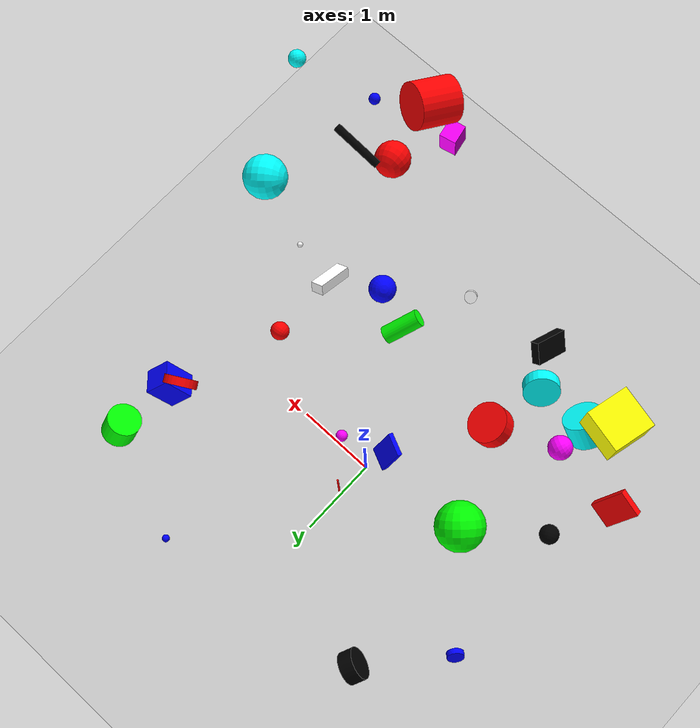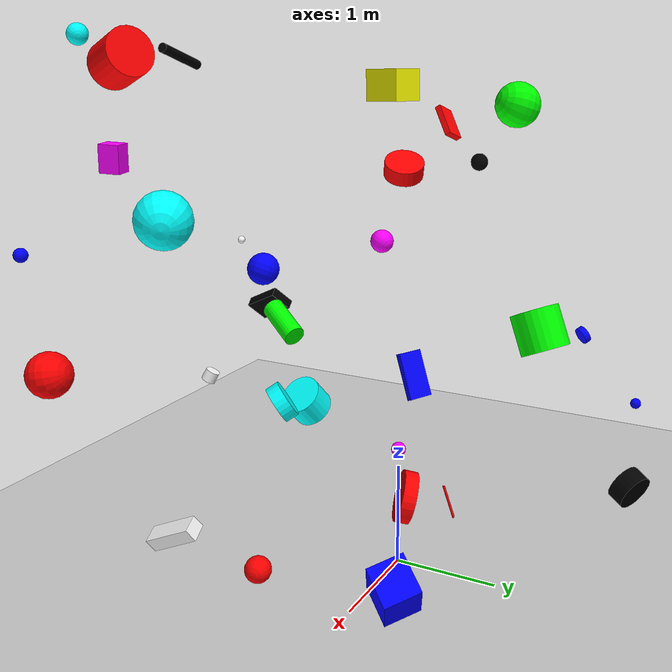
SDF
<sdf version="1.6">
 <world name="default">
  <include><uri>model://ground_plane</uri></include>
  <include><uri>model://sun</uri></include>
  <model name="model_0">
   <allow_auto_disable>false</allow_auto_disable>
   <pose>1.887654655655207
      0.9389138400704229
      1.7299534319423524
      0.7574217904752748
      1.913198525685011
      2.861334671547203</pose>
   <link name="link">
    <inertial>
     <mass>0.010189974300788652</mass>
     <inertia>
      <ixx>0.00010009734607922015</ixx>
      <iyy>0.00010009734607922015</iyy>
      <izz>0.00018338561655255602</izz>
      <ixy>0.0</ixy>
      <ixz>0.0</ixz>
      <iyz>0.0</iyz>
     </inertia>
    </inertial>
    <collision name="collision">
     <geometry>
      <cylinder><radius>0.18971911423663762</radius><length>0.09948577698591696</length></cylinder>
     </geometry>
     <surface>
      <bounce><restitution_coefficient>0</restitution_coefficient><threshold>5.0</threshold></bounce>
      <friction><ode><mu>3</mu></ode></friction>
     </surface>
    </collision>
    <visual name="visual">
     <geometry>
      <cylinder><radius>0.18971911423663762</radius><length>0.09948577698591696</length></cylinder>
     </geometry>
     <material>
      <diffuse>1
            0
            0
            1</diffuse>
      <specular>0
            1
            1
            1</specular>
      <ambient>1
            1
            1
            1</ambient>
     </material>
    </visual>
   </link>
  </model>
  <model name="model_1">
   <allow_auto_disable>false</allow_auto_disable>
   <pose>1.4790698495858656
      -0.6942271876196537
      3.395240197062054
      0.2310168436253863
      0.23559698313119173
      0.22196660758204428</pose>
   <link name="link">
    <inertial>
     <mass>0.0002930041019828856</mass>
     <inertia>
      <ixx>9.390275060571858e-08</ixx>
      <iyy>9.390275060571858e-08</iyy>
      <izz>9.390275060571858e-08</izz>
      <ixy>0.0</ixy>
      <ixz>0.0</ixz>
      <iyz>0.0</iyz>
     </inertia>
    </inertial>
    <collision name="collision">
     <geometry><sphere><radius>0.02830559647371755</radius></sphere></geometry>
     <surface>
      <bounce><restitution_coefficient>0</restitution_coefficient><threshold>5.0</threshold></bounce>
      <friction><ode><mu>9</mu></ode></friction>
     </surface>
    </collision>
    <visual name="visual">
     <geometry><sphere><radius>0.02830559647371755</radius></sphere></geometry>
     <material>
      <diffuse>1
            1
            1
            1</diffuse>
      <specular>0
            1
            0
            1</specular>
      <ambient>1
            0
            0
            1</ambient>
     </material>
    </visual>
   </link>
  </model>
  <model name="model_2">
   <allow_auto_disable>false</allow_auto_disable>
   <pose>1.7715244163271944
      -1.2914916048582858
      0.8220356710196223
      1.1288098892020566
      2.6994528550303336
      1.5635208453190168</pose>
   <link name="link">
    <inertial>
     <mass>0.05056256824862559</mass>
     <inertia>
      <ixx>0.0001938158617636058</ixx>
      <iyy>0.0011301221561560778</iyy>
      <izz>0.0010834192005103828</izz>
      <ixy>0.0</ixy>
      <ixz>0.0</ixz>
      <iyz>0.0</iyz>
     </inertia>
    </inertial>
    <collision name="collision">
     <geometry>
      <box><size>0.4895614770353805
           0.13212544103519724
           0.16894120694186135</size></box>
     </geometry>
     <surface>
      <bounce><restitution_coefficient>1</restitution_coefficient><threshold>5.0</threshold></bounce>
      <friction><ode><mu>3</mu></ode></friction>
     </surface>
    </collision>
    <visual name="visual">
     <geometry>
      <box><size>0.4895614770353805
           0.13212544103519724
           0.16894120694186135</size></box>
     </geometry>
     <material>
      <diffuse>1
            1
            1
            1</diffuse>
      <specular>0
            0
            1
            1</specular>
      <ambient>1
            0
            1
            1</ambient>
     </material>
    </visual>
   </link>
  </model>
  <model name="model_3">
   <allow_auto_disable>false</allow_auto_disable>
   <pose>-0.33870694993700257
      -0.0051629085107278705
      1.8157797302526428
      2.7355536595678305
      0.005701513526610454
      2.714190609407341</pose>
   <link name="link">
    <inertial>
     <mass>0.01846200728401385</mass>
     <inertia>
      <ixx>0.0003184249222839351</ixx>
      <iyy>0.00041685028581738156</iyy>
      <izz>0.00010734331431453465</izz>
      <ixy>0.0</ixy>
      <ixz>0.0</ixz>
      <iyz>0.0</iyz>
     </inertia>
    </inertial>
    <collision name="collision">
     <geometry>
      <box><size>0.25859837990154
           0.053835493903490204
           0.4517440460555017</size></box>
     </geometry>
     <surface>
      <bounce><restitution_coefficient>1</restitution_coefficient><threshold>5.0</threshold></bounce>
      <friction><ode><mu>4</mu></ode></friction>
     </surface>
    </collision>
    <visual name="visual">
     <geometry>
      <box><size>0.25859837990154
           0.053835493903490204
           0.4517440460555017</size></box>
     </geometry>
     <material>
      <diffuse>0
            0
            1
            1</diffuse>
      <specular>0
            0
            0
            1</specular>
      <ambient>1
            1
            0
            1</ambient>
     </material>
    </visual>
   </link>
  </model>
  <model name="model_4">
   <allow_auto_disable>false</allow_auto_disable>
   <pose>-1.0172887372563921
      -1.9310129551387605
      0.971739077393901
      0.6944462677025655
      0.8144261306268451
      3.1052979336277136</pose>
   <link name="link">
    <inertial>
     <mass>0.07476015328760374</mass>
     <inertia>
      <ixx>0.0010602490192399964</ixx>
      <iyy>0.0010602490192399964</iyy>
      <izz>0.0018174557145656186</izz>
      <ixy>0.0</ixy>
      <ixz>0.0</ixz>
      <iyz>0.0</iyz>
     </inertia>
    </inertial>
    <collision name="collision">
     <geometry>
      <cylinder><radius>0.2205016405009265</radius><length>0.15595244124182364</length></cylinder>
     </geometry>
     <surface>
      <bounce><restitution_coefficient>1</restitution_coefficient><threshold>5.0</threshold></bounce>
      <friction><ode><mu>3</mu></ode></friction>
     </surface>
    </collision>
    <visual name="visual">
     <geometry>
      <cylinder><radius>0.2205016405009265</radius><length>0.15595244124182364</length></cylinder>
     </geometry>
     <material>
      <diffuse>0
            1
            1
            1</diffuse>
      <specular>1
            1
            0
            1</specular>
      <ambient>0
            0
            1
            1</ambient>
     </material>
    </visual>
   </link>
  </model>
  <model name="model_5">
   <allow_auto_disable>false</allow_auto_disable>
   <pose>2.1452336069443936
      -0.9188429497202633
      3.633837923606336
      1.034934632034076
      1.9653315330930483
      1.638058459419181</pose>
   <link name="link">
    <inertial>
     <mass>0.0952939855880084</mass>
     <inertia>
      <ixx>0.0019189966646385801</ixx>
      <iyy>0.0019189966646385801</iyy>
      <izz>0.0019189966646385801</izz>
      <ixy>0.0</ixy>
      <ixz>0.0</ixz>
      <iyz>0.0</iyz>
     </inertia>
    </inertial>
    <collision name="collision">
     <geometry><sphere><radius>0.22437494973331243</radius></sphere></geometry>
     <surface>
      <bounce><restitution_coefficient>0</restitution_coefficient><threshold>5.0</threshold></bounce>
      <friction><ode><mu>0</mu></ode></friction>
     </surface>
    </collision>
    <visual name="visual">
     <geometry><sphere><radius>0.22437494973331243</radius></sphere></geometry>
     <material>
      <diffuse>0
            1
            1
            1</diffuse>
      <specular>0
            0
            1
            1</specular>
      <ambient>1
            1
            0
            1</ambient>
     </material>
    </visual>
   </link>
  </model>
  <model name="model_6">
   <allow_auto_disable>false</allow_auto_disable>
   <pose>-1.679630104174756
      -2.0046719306151193
      0.7448518139274061
      2.5507409741356852
      2.6496756645132122
      1.9660926157494578</pose>
   <link name="link">
    <inertial>
     <mass>0.26796033641616945</mass>
     <inertia>
      <ixx>0.006231493168336473</ixx>
      <iyy>0.006231493168336473</iyy>
      <izz>0.007876500109474943</izz>
      <ixy>0.0</ixy>
      <ixz>0.0</ixz>
      <iyz>0.0</iyz>
     </inertia>
    </inertial>
    <collision name="collision">
     <geometry>
      <cylinder><radius>0.2424635068988261</radius><length>0.3204648601307785</length></cylinder>
     </geometry>
     <surface>
      <bounce><restitution_coefficient>0</restitution_coefficient><threshold>5.0</threshold></bounce>
      <friction><ode><mu>8</mu></ode></friction>
     </surface>
    </collision>
    <visual name="visual">
     <geometry>
      <cylinder><radius>0.2424635068988261</radius><length>0.3204648601307785</length></cylinder>
     </geometry>
     <material>
      <diffuse>0
            1
            1
            1</diffuse>
      <specular>1
            1
            0
            1</specular>
      <ambient>0
            1
            0
            1</ambient>
     </material>
    </visual>
   </link>
  </model>
  <model name="model_7">
   <allow_auto_disable>false</allow_auto_disable>
   <pose>0.9947907909986293
      -2.377351061646557
      3.8938031813357314
      0.7683768568605853
      1.6287450472706058
      0.9669756742774895</pose>
   <link name="link">
    <inertial>
     <mass>0.002372788089050921</mass>
     <inertia>
      <ixx>1.3938344917364192e-05</ixx>
      <iyy>1.9468465577847414e-05</iyy>
      <izz>2.1378176616648465e-05</izz>
      <ixy>0.0</ixy>
      <ixz>0.0</ixz>
      <iyz>0.0</iyz>
     </inertia>
    </inertial>
    <collision name="collision">
     <geometry>
      <box><size>0.260849048509887
           0.20018620489734795
           0.17440314067945198</size></box>
     </geometry>
     <surface>
      <bounce><restitution_coefficient>1</restitution_coefficient><threshold>5.0</threshold></bounce>
      <friction><ode><mu>9</mu></ode></friction>
     </surface>
    </collision>
    <visual name="visual">
     <geometry>
      <box><size>0.260849048509887
           0.20018620489734795
           0.17440314067945198</size></box>
     </geometry>
     <material>
      <diffuse>1
            0
            1
            1</diffuse>
      <specular>0
            0
            1
            1</specular>
      <ambient>0
            1
            0
            1</ambient>
     </material>
    </visual>
   </link>
  </model>
  <model name="model_8">
   <allow_auto_disable>false</allow_auto_disable>
   <pose>1.2876369522529236
      -1.3548592694538715
      4.782048741286328
      2.3163850968673714
      2.0015586257693276
      2.3228512967356374</pose>
   <link name="link">
    <inertial>
     <mass>0.005499341519212142</mass>
     <inertia>
      <ixx>0.00011210256517416153</ixx>
      <iyy>0.00011210256517416153</iyy>
      <izz>3.958748478411678e-06</izz>
      <ixy>0.0</ixy>
      <ixz>0.0</ixz>
      <iyz>0.0</iyz>
     </inertia>
    </inertial>
    <collision name="collision">
     <geometry>
      <cylinder><radius>0.037943606439474115</radius><length>0.4902015397289008</length></cylinder>
     </geometry>
     <surface>
      <bounce><restitution_coefficient>0</restitution_coefficient><threshold>5.0</threshold></bounce>
      <friction><ode><mu>2</mu></ode></friction>
     </surface>
    </collision>
    <visual name="visual">
     <geometry>
      <cylinder><radius>0.037943606439474115</radius><length>0.4902015397289008</length></cylinder>
     </geometry>
     <material>
      <diffuse>0
            0
            0
            1</diffuse>
      <specular>1
            1
            1
            1</specular>
      <ambient>0
            0
            1
            1</ambient>
     </material>
    </visual>
   </link>
  </model>
  <model name="model_9">
   <allow_auto_disable>false</allow_auto_disable>
   <pose>2.204230941869609
      -1.5590377789687055
      4.949468536241247
      1.9040551421408745
      0.4115095092884713
      2.5221538059753064</pose>
   <link name="link">
    <inertial>
     <mass>0.0033661323921900673</mass>
     <inertia>
      <ixx>8.685550687660324e-06</ixx>
      <iyy>8.685550687660324e-06</iyy>
      <izz>8.685550687660324e-06</izz>
      <ixy>0.0</ixy>
      <ixz>0.0</ixz>
      <iyz>0.0</iyz>
     </inertia>
    </inertial>
    <collision name="collision">
     <geometry><sphere><radius>0.08031618795105948</radius></sphere></geometry>
     <surface>
      <bounce><restitution_coefficient>0</restitution_coefficient><threshold>5.0</threshold></bounce>
      <friction><ode><mu>0</mu></ode></friction>
     </surface>
    </collision>
    <visual name="visual">
     <geometry><sphere><radius>0.08031618795105948</radius></sphere></geometry>
     <material>
      <diffuse>0
            1
            1
            1</diffuse>
      <specular>1
            0
            1
            1</specular>
      <ambient>0
            1
            1
            1</ambient>
     </material>
    </visual>
   </link>
  </model>
  <model name="model_10">
   <allow_auto_disable>false</allow_auto_disable>
   <pose>-2.308685005537906
      1.1079397270075768
      1.8385729166819171
      1.0276604307585278
      2.6095759304815838
      0.5368832718861566</pose>
   <link name="link">
    <inertial>
     <mass>0.003563963134420051</mass>
     <inertia>
      <ixx>8.842046103569594e-06</ixx>
      <iyy>8.842046103569594e-06</iyy>
      <izz>1.5402982440608672e-05</izz>
      <ixy>0.0</ixy>
      <ixz>0.0</ixz>
      <iyz>0.0</iyz>
     </inertia>
    </inertial>
    <collision name="collision">
     <geometry>
      <cylinder><radius>0.09297170734337751</radius><length>0.061970088395252074</length></cylinder>
     </geometry>
     <surface>
      <bounce><restitution_coefficient>1</restitution_coefficient><threshold>5.0</threshold></bounce>
      <friction><ode><mu>8</mu></ode></friction>
     </surface>
    </collision>
    <visual name="visual">
     <geometry>
      <cylinder><radius>0.09297170734337751</radius><length>0.061970088395252074</length></cylinder>
     </geometry>
     <material>
      <diffuse>0
            0
            1
            1</diffuse>
      <specular>0
            1
            0
            1</specular>
      <ambient>0
            0
            1
            1</ambient>
     </material>
    </visual>
   </link>
  </model>
  <model name="model_11">
   <allow_auto_disable>false</allow_auto_disable>
   <pose>2.0961536885469148
      -2.4520538784498886
      3.211350426689497
      0.8337264465043579
      2.3315165832416334
      0.34599392796943956</pose>
   <link name="link">
    <inertial>
     <mass>0.0035917460718190744</mass>
     <inertia>
      <ixx>5.4763193211694825e-06</ixx>
      <iyy>5.4763193211694825e-06</iyy>
      <izz>5.4763193211694825e-06</izz>
      <ixy>0.0</ixy>
      <ixz>0.0</ixz>
      <iyz>0.0</iyz>
     </inertia>
    </inertial>
    <collision name="collision">
     <geometry><sphere><radius>0.061739281845869354</radius></sphere></geometry>
     <surface>
      <bounce><restitution_coefficient>0</restitution_coefficient><threshold>5.0</threshold></bounce>
      <friction><ode><mu>9</mu></ode></friction>
     </surface>
    </collision>
    <visual name="visual">
     <geometry><sphere><radius>0.061739281845869354</radius></sphere></geometry>
     <material>
      <diffuse>0
            0
            1
            1</diffuse>
      <specular>1
            1
            0
            1</specular>
      <ambient>0
            1
            0
            1</ambient>
     </material>
    </visual>
   </link>
  </model>
  <model name="model_12">
   <allow_auto_disable>false</allow_auto_disable>
   <pose>-1.6167004611942093
      0.49291712367799967
      4.298715555180966
      1.9240546203813655
      2.597750081162845
      0.9519680270360501</pose>
   <link name="link">
    <inertial>
     <mass>0.009544174927099056</mass>
     <inertia>
      <ixx>0.00019497348999209603</ixx>
      <iyy>0.00019497348999209603</iyy>
      <izz>0.00019497348999209603</izz>
      <ixy>0.0</ixy>
      <ixz>0.0</ixz>
      <iyz>0.0</iyz>
     </inertia>
    </inertial>
    <collision name="collision">
     <geometry><sphere><radius>0.22598967200870307</radius></sphere></geometry>
     <surface>
      <bounce><restitution_coefficient>0</restitution_coefficient><threshold>5.0</threshold></bounce>
      <friction><ode><mu>10</mu></ode></friction>
     </surface>
    </collision>
    <visual name="visual">
     <geometry><sphere><radius>0.22598967200870307</radius></sphere></geometry>
     <material>
      <diffuse>0
            1
            0
            1</diffuse>
      <specular>0
            0
            1
            1</specular>
      <ambient>1
            1
            0
            1</ambient>
     </material>
    </visual>
   </link>
  </model>
  <model name="model_13">
   <allow_auto_disable>false</allow_auto_disable>
   <pose>0.644663293389697
      2.2709465574008902
      2.259581645497277
      2.3959806689964394
      2.9575102377790854
      1.5043647340811026</pose>
   <link name="link">
    <inertial>
     <mass>0.0010769993634017602</mass>
     <inertia>
      <ixx>6.681885239694816e-07</ixx>
      <iyy>6.681885239694816e-07</iyy>
      <izz>6.681885239694816e-07</izz>
      <ixy>0.0</ixy>
      <ixz>0.0</ixz>
      <iyz>0.0</iyz>
     </inertia>
    </inertial>
    <collision name="collision">
     <geometry><sphere><radius>0.03938327130632619</radius></sphere></geometry>
     <surface>
      <bounce><restitution_coefficient>1</restitution_coefficient><threshold>5.0</threshold></bounce>
      <friction><ode><mu>10</mu></ode></friction>
     </surface>
    </collision>
    <visual name="visual">
     <geometry><sphere><radius>0.03938327130632619</radius></sphere></geometry>
     <material>
      <diffuse>0
            0
            1
            1</diffuse>
      <specular>1
            0
            0
            1</specular>
      <ambient>0
            0
            0
            1</ambient>
     </material>
    </visual>
   </link>
  </model>
  <model name="model_14">
   <allow_auto_disable>false</allow_auto_disable>
   <pose>0.20798187790464073
      -1.9984294213572644
      1.6590963450897946
      0.39310913719334156
      0.30386117944051144
      2.9840125218452496</pose>
   <link name="link">
    <inertial>
     <mass>0.008118880068331658</mass>
     <inertia>
      <ixx>1.9130607940468235e-05</ixx>
      <iyy>1.9130607940468235e-05</iyy>
      <izz>2.076580331026557e-05</izz>
      <ixy>0.0</ixy>
      <ixz>0.0</ixz>
      <iyz>0.0</iyz>
     </inertia>
    </inertial>
    <collision name="collision">
     <geometry>
      <cylinder><radius>0.07152227215089456</radius><length>0.11370764273887207</length></cylinder>
     </geometry>
     <surface>
      <bounce><restitution_coefficient>0</restitution_coefficient><threshold>5.0</threshold></bounce>
      <friction><ode><mu>2</mu></ode></friction>
     </surface>
    </collision>
    <visual name="visual">
     <geometry>
      <cylinder><radius>0.07152227215089456</radius><length>0.11370764273887207</length></cylinder>
     </geometry>
     <material>
      <diffuse>1
            1
            1
            1</diffuse>
      <specular>1
            1
            0
            1</specular>
      <ambient>0
            1
            0
            1</ambient>
     </material>
    </visual>
   </link>
  </model>
  <model name="model_15">
   <allow_auto_disable>false</allow_auto_disable>
   <pose>0.24513415644369152
      0.11315837691926056
      1.2957904393692097
      2.1123320509974444
      0.10520895308332567
      1.3967932111639223</pose>
   <link name="link">
    <inertial>
     <mass>0.0023492418869609797</mass>
     <inertia>
      <ixx>4.266482257184055e-06</ixx>
      <iyy>4.266482257184055e-06</iyy>
      <izz>4.266482257184055e-06</izz>
      <ixy>0.0</ixy>
      <ixz>0.0</ixz>
      <iyz>0.0</iyz>
     </inertia>
    </inertial>
    <collision name="collision">
     <geometry><sphere><radius>0.0673815672916668</radius></sphere></geometry>
     <surface>
      <bounce><restitution_coefficient>1</restitution_coefficient><threshold>5.0</threshold></bounce>
      <friction><ode><mu>5</mu></ode></friction>
     </surface>
    </collision>
    <visual name="visual">
     <geometry><sphere><radius>0.0673815672916668</radius></sphere></geometry>
     <material>
      <diffuse>1
            0
            1
            1</diffuse>
      <specular>0
            0
            0
            1</specular>
      <ambient>0
            0
            1
            1</ambient>
     </material>
    </visual>
   </link>
  </model>
  <model name="model_16">
   <allow_auto_disable>false</allow_auto_disable>
   <pose>-1.1517710240345025
      -0.5134815499444785
      3.6715364908425694
      2.7015812160437207
      2.8570237662527456
      2.67677552013769</pose>
   <link name="link">
    <inertial>
     <mass>0.01844286660092669</mass>
     <inertia>
      <ixx>0.00022440424346407034</ixx>
      <iyy>0.00022440424346407034</iyy>
      <izz>0.00036979922383428143</izz>
      <ixy>0.0</ixy>
      <ixz>0.0</ixz>
      <iyz>0.0</iyz>
     </inertia>
    </inertial>
    <collision name="collision">
     <geometry>
      <cylinder><radius>0.20025519115685236</radius><length>0.16032469349561265</length></cylinder>
     </geometry>
     <surface>
      <bounce><restitution_coefficient>0</restitution_coefficient><threshold>5.0</threshold></bounce>
      <friction><ode><mu>0</mu></ode></friction>
     </surface>
    </collision>
    <visual name="visual">
     <geometry>
      <cylinder><radius>0.20025519115685236</radius><length>0.16032469349561265</length></cylinder>
     </geometry>
     <material>
      <diffuse>1
            0
            0
            1</diffuse>
      <specular>1
            1
            0
            1</specular>
      <ambient>1
            1
            1
            1</ambient>
     </material>
    </visual>
   </link>
  </model>
  <model name="model_17">
   <allow_auto_disable>false</allow_auto_disable>
   <pose>-1.7268300784841268
      -1.0346999346537922
      2.775836489045859
      0.6755616072851081
      2.0862734222808195
      1.9042396536661663</pose>
   <link name="link">
    <inertial>
     <mass>0.017112252003264126</mass>
     <inertia>
      <ixx>0.00011288026952844088</ixx>
      <iyy>0.00011288026952844088</iyy>
      <izz>0.00011288026952844088</izz>
      <ixy>0.0</ixy>
      <ixz>0.0</ixz>
      <iyz>0.0</iyz>
     </inertia>
    </inertial>
    <collision name="collision">
     <geometry><sphere><radius>0.12841786330412025</radius></sphere></geometry>
     <surface>
      <bounce><restitution_coefficient>1</restitution_coefficient><threshold>5.0</threshold></bounce>
      <friction><ode><mu>4</mu></ode></friction>
     </surface>
    </collision>
    <visual name="visual">
     <geometry><sphere><radius>0.12841786330412025</radius></sphere></geometry>
     <material>
      <diffuse>1
            0
            1
            1</diffuse>
      <specular>0
            0
            1
            1</specular>
      <ambient>1
            1
            0
            1</ambient>
     </material>
    </visual>
   </link>
  </model>
  <model name="model_18">
   <allow_auto_disable>false</allow_auto_disable>
   <pose>0.37560323112249083
      -1.0138186833701894
      2.3939810935591472
      0.14959831842337953
      2.046562574955379
      1.268510836121093</pose>
   <link name="link">
    <inertial>
     <mass>0.013055144482360429</mass>
     <inertia>
      <ixx>0.00022239862887640053</ixx>
      <iyy>0.00022239862887640053</iyy>
      <izz>6.221023388062796e-05</izz>
      <ixy>0.0</ixy>
      <ixz>0.0</ixz>
      <iyz>0.0</iyz>
     </inertia>
    </inertial>
    <collision name="collision">
     <geometry>
      <cylinder><radius>0.09762365727409282</radius><length>0.4193241757199068</length></cylinder>
     </geometry>
     <surface>
      <bounce><restitution_coefficient>0</restitution_coefficient><threshold>5.0</threshold></bounce>
      <friction><ode><mu>4</mu></ode></friction>
     </surface>
    </collision>
    <visual name="visual">
     <geometry>
      <cylinder><radius>0.09762365727409282</radius><length>0.4193241757199068</length></cylinder>
     </geometry>
     <material>
      <diffuse>0
            1
            0
            1</diffuse>
      <specular>0
            1
            1
            1</specular>
      <ambient>1
            0
            0
            1</ambient>
     </material>
    </visual>
   </link>
  </model>
  <model name="model_19">
   <allow_auto_disable>false</allow_auto_disable>
   <pose>-0.8789931056502098
      -1.972676393292752
      2.154883026838841
      0.968318527939549
      0.7290961690477293
      2.4894877511088946</pose>
   <link name="link">
    <inertial>
     <mass>0.021089022419622502</mass>
     <inertia>
      <ixx>0.00032675059212524776</ixx>
      <iyy>0.00042094267812055526</iyy>
      <izz>0.00013135603420977264</izz>
      <ixy>0.0</ixy>
      <ixz>0.0</ixz>
      <iyz>0.0</iyz>
     </inertia>
    </inertial>
    <collision name="collision">
     <geometry>
      <box><size>0.2533185578327438
           0.10282727434438442
           0.4187517202569713</size></box>
     </geometry>
     <surface>
      <bounce><restitution_coefficient>1</restitution_coefficient><threshold>5.0</threshold></bounce>
      <friction><ode><mu>4</mu></ode></friction>
     </surface>
    </collision>
    <visual name="visual">
     <geometry>
      <box><size>0.2533185578327438
           0.10282727434438442
           0.4187517202569713</size></box>
     </geometry>
     <material>
      <diffuse>0
            0
            0
            1</diffuse>
      <specular>0
            0
            0
            1</specular>
      <ambient>1
            0
            0
            1</ambient>
     </material>
    </visual>
   </link>
  </model>
  <model name="model_20">
   <allow_auto_disable>false</allow_auto_disable>
   <pose>1.790391808083946
      -0.42617080429509535
      0.7204324939239211
      2.15306868425555
      1.5716911581653275
      2.2947582737042813</pose>
   <link name="link">
    <inertial>
     <mass>0.0031440717897529085</mass>
     <inertia>
      <ixx>1.6432364402572192e-05</ixx>
      <iyy>1.6432364402572192e-05</iyy>
      <izz>1.6432364402572192e-05</izz>
      <ixy>0.0</ixy>
      <ixz>0.0</ixz>
      <iyz>0.0</iyz>
     </inertia>
    </inertial>
    <collision name="collision">
     <geometry><sphere><radius>0.11430725773154123</radius></sphere></geometry>
     <surface>
      <bounce><restitution_coefficient>1</restitution_coefficient><threshold>5.0</threshold></bounce>
      <friction><ode><mu>4</mu></ode></friction>
     </surface>
    </collision>
    <visual name="visual">
     <geometry><sphere><radius>0.11430725773154123</radius></sphere></geometry>
     <material>
      <diffuse>1
            0
            0
            1</diffuse>
      <specular>0
            0
            0
            1</specular>
      <ambient>1
            1
            1
            1</ambient>
     </material>
    </visual>
   </link>
  </model>
  <model name="model_21">
   <allow_auto_disable>false</allow_auto_disable>
   <pose>-2.025593533424994
      -1.0612360778656864
      4.441464645565753
      1.0612799316870478
      1.5307668552002691
      0.8286787462843659</pose>
   <link name="link">
    <inertial>
     <mass>0.225619874581789</mass>
     <inertia>
      <ixx>0.006372604206567321</ixx>
      <iyy>0.0053053052359620335</iyy>
      <izz>0.005434926211290203</izz>
      <ixy>0.0</ixy>
      <ixz>0.0</ixz>
      <iyz>0.0</iyz>
     </inertia>
    </inertial>
    <collision name="collision">
     <geometry>
      <box><size>0.34080796137148267
           0.4158320423760592
           0.40745817219082453</size></box>
     </geometry>
     <surface>
      <bounce><restitution_coefficient>0</restitution_coefficient><threshold>5.0</threshold></bounce>
      <friction><ode><mu>8</mu></ode></friction>
     </surface>
    </collision>
    <visual name="visual">
     <geometry>
      <box><size>0.34080796137148267
           0.4158320423760592
           0.40745817219082453</size></box>
     </geometry>
     <material>
      <diffuse>1
            1
            0
            1</diffuse>
      <specular>0
            0
            1
            1</specular>
      <ambient>1
            0
            1
            1</ambient>
     </material>
    </visual>
   </link>
  </model>
  <model name="model_22">
   <allow_auto_disable>false</allow_auto_disable>
   <pose>1.096586010881957
      -2.130913503716485
      4.758180169290107
      0.5876924436037139
      1.1960360878428478
      1.7670870167164834</pose>
   <link name="link">
    <inertial>
     <mass>0.028275715685687954</mass>
     <inertia>
      <ixx>0.0007411242008777399</ixx>
      <iyy>0.0007411242008777399</iyy>
      <izz>0.0006774417682298014</izz>
      <ixy>0.0</ixy>
      <ixz>0.0</ixz>
      <iyz>0.0</iyz>
     </inertia>
    </inertial>
    <collision name="collision">
     <geometry>
      <cylinder><radius>0.2188992026913801</radius><length>0.41325164954913446</length></cylinder>
     </geometry>
     <surface>
      <bounce><restitution_coefficient>0</restitution_coefficient><threshold>5.0</threshold></bounce>
      <friction><ode><mu>5</mu></ode></friction>
     </surface>
    </collision>
    <visual name="visual">
     <geometry>
      <cylinder><radius>0.2188992026913801</radius><length>0.41325164954913446</length></cylinder>
     </geometry>
     <material>
      <diffuse>1
            0
            0
            1</diffuse>
      <specular>0
            1
            0
            1</specular>
      <ambient>1
            0
            0
            1</ambient>
     </material>
    </visual>
   </link>
  </model>
  <model name="model_23">
   <allow_auto_disable>false</allow_auto_disable>
   <pose>-0.05030661153222882
      0.5011657134854208
      0.7240025602334369
      0.31681307641202144
      0.05761060994152862
      0.7470018436866075</pose>
   <link name="link">
    <inertial>
     <mass>0.00030248810069191515</mass>
     <inertia>
      <ixx>3.3544011647396842e-06</ixx>
      <iyy>3.3544011647396842e-06</iyy>
      <izz>1.9076867575154754e-08</izz>
      <ixy>0.0</ixy>
      <ixz>0.0</ixz>
      <iyz>0.0</iyz>
     </inertia>
    </inertial>
    <collision name="collision">
     <geometry>
      <cylinder><radius>0.011230895410513936</radius><length>0.3642718616868541</length></cylinder>
     </geometry>
     <surface>
      <bounce><restitution_coefficient>0</restitution_coefficient><threshold>5.0</threshold></bounce>
      <friction><ode><mu>2</mu></ode></friction>
     </surface>
    </collision>
    <visual name="visual">
     <geometry>
      <cylinder><radius>0.011230895410513936</radius><length>0.3642718616868541</length></cylinder>
     </geometry>
     <material>
      <diffuse>1
            0
            0
            1</diffuse>
      <specular>1
            0
            0
            1</specular>
      <ambient>0
            0
            0
            1</ambient>
     </material>
    </visual>
   </link>
  </model>
  <model name="model_24">
   <allow_auto_disable>false</allow_auto_disable>
   <pose>-1.5382837500912172
      1.864073546376293
      0.536675201233908
      2.6842704010006453
      2.0419511822119993
      0.6203927975855598</pose>
   <link name="link">
    <inertial>
     <mass>0.08003651316786486</mass>
     <inertia>
      <ixx>0.0009888760053240098</ixx>
      <iyy>0.0009888760053240098</iyy>
      <izz>0.0015439994274462482</izz>
      <ixy>0.0</ixy>
      <ixz>0.0</ixz>
      <iyz>0.0</iyz>
     </inertia>
    </inertial>
    <collision name="collision">
     <geometry>
      <cylinder><radius>0.19642397034591927</radius><length>0.18032360546522636</length></cylinder>
     </geometry>
     <surface>
      <bounce><restitution_coefficient>1</restitution_coefficient><threshold>5.0</threshold></bounce>
      <friction><ode><mu>2</mu></ode></friction>
     </surface>
    </collision>
    <visual name="visual">
     <geometry>
      <cylinder><radius>0.19642397034591927</radius><length>0.18032360546522636</length></cylinder>
     </geometry>
     <material>
      <diffuse>0
            0
            0
            1</diffuse>
      <specular>1
            0
            1
            1</specular>
      <ambient>1
            0
            0
            1</ambient>
     </material>
    </visual>
   </link>
  </model>
  <model name="model_25">
   <allow_auto_disable>false</allow_auto_disable>
   <pose>2.1592688404149456
      0.9796309731697312
      1.1296478571694928
      1.917865322889936
      0.6177546568561421
      0.9965875205847108</pose>
   <link name="link">
    <inertial>
     <mass>0.10254345575609655</mass>
     <inertia>
      <ixx>0.002096587957127531</ixx>
      <iyy>0.0015735250083474554</iyy>
      <izz>0.002212085867892282</izz>
      <ixy>0.0</ixy>
      <ixz>0.0</ixz>
      <iyz>0.0</iyz>
     </inertia>
    </inertial>
    <collision name="collision">
     <geometry>
      <box><size>0.31436878887945213
           0.400048025280119
           0.29208176767782046</size></box>
     </geometry>
     <surface>
      <bounce><restitution_coefficient>1</restitution_coefficient><threshold>5.0</threshold></bounce>
      <friction><ode><mu>1</mu></ode></friction>
     </surface>
    </collision>
    <visual name="visual">
     <geometry>
      <box><size>0.31436878887945213
           0.400048025280119
           0.29208176767782046</size></box>
     </geometry>
     <material>
      <diffuse>0
            0
            1
            1</diffuse>
      <specular>1
            0
            0
            1</specular>
      <ambient>1
            0
            1
            1</ambient>
     </material>
    </visual>
   </link>
  </model>
  <model name="model_26">
   <allow_auto_disable>false</allow_auto_disable>
   <pose>0.673558082996685
      -1.0260119834592751
      2.9577319164325497
      0.4155147297672459
      3.0949912947834743
      0.9268053738809474</pose>
   <link name="link">
    <inertial>
     <mass>0.04123562332091736</mass>
     <inertia>
      <ixx>0.0003402840808864813</ixx>
      <iyy>0.0003402840808864813</iyy>
      <izz>0.0003402840808864813</izz>
      <ixy>0.0</ixy>
      <ixz>0.0</ixz>
      <iyz>0.0</iyz>
     </inertia>
    </inertial>
    <collision name="collision">
     <geometry><sphere><radius>0.1436331015982009</radius></sphere></geometry>
     <surface>
      <bounce><restitution_coefficient>1</restitution_coefficient><threshold>5.0</threshold></bounce>
      <friction><ode><mu>2</mu></ode></friction>
     </surface>
    </collision>
    <visual name="visual">
     <geometry><sphere><radius>0.1436331015982009</radius></sphere></geometry>
     <material>
      <diffuse>0
            0
            1
            1</diffuse>
      <specular>1
            1
            0
            1</specular>
      <ambient>0
            0
            1
            1</ambient>
     </material>
    </visual>
   </link>
  </model>
  <model name="model_27">
   <allow_auto_disable>false</allow_auto_disable>
   <pose>1.5795334234743743
      1.7763078298743515
      3.017903800898464
      2.9430873436822296
      2.7477256292529493
      0.6754902645630908</pose>
   <link name="link">
    <inertial>
     <mass>0.05821544596261457</mass>
     <inertia>
      <ixx>0.0008094683218166805</ixx>
      <iyy>0.0008094683218166805</iyy>
      <izz>0.0008426371872357701</izz>
      <ixy>0.0</ixy>
      <ixz>0.0</ixz>
      <iyz>0.0</iyz>
     </inertia>
    </inertial>
    <collision name="collision">
     <geometry>
      <cylinder><radius>0.17014382588407242</radius><length>0.2828597491196815</length></cylinder>
     </geometry>
     <surface>
      <bounce><restitution_coefficient>1</restitution_coefficient><threshold>5.0</threshold></bounce>
      <friction><ode><mu>5</mu></ode></friction>
     </surface>
    </collision>
    <visual name="visual">
     <geometry>
      <cylinder><radius>0.17014382588407242</radius><length>0.2828597491196815</length></cylinder>
     </geometry>
     <material>
      <diffuse>0
            1
            0
            1</diffuse>
      <specular>1
            1
            1
            1</specular>
      <ambient>1
            1
            1
            1</ambient>
     </material>
    </visual>
   </link>
  </model>
  <model name="model_28">
   <allow_auto_disable>false</allow_auto_disable>
   <pose>-2.2159517303400733
      -0.11055217399530592
      3.642783082241283
      1.4972684409953694
      1.1435336746511162
      0.3558205740301163</pose>
   <link name="link">
    <inertial>
     <mass>0.0021003928581826755</mass>
     <inertia>
      <ixx>7.307025346331609e-06</ixx>
      <iyy>7.307025346331609e-06</iyy>
      <izz>7.307025346331609e-06</izz>
      <ixy>0.0</ixy>
      <ixz>0.0</ixz>
      <iyz>0.0</iyz>
     </inertia>
    </inertial>
    <collision name="collision">
     <geometry><sphere><radius>0.0932588476452897</radius></sphere></geometry>
     <surface>
      <bounce><restitution_coefficient>0</restitution_coefficient><threshold>5.0</threshold></bounce>
      <friction><ode><mu>1</mu></ode></friction>
     </surface>
    </collision>
    <visual name="visual">
     <geometry><sphere><radius>0.0932588476452897</radius></sphere></geometry>
     <material>
      <diffuse>0
            0
            0
            1</diffuse>
      <specular>0
            0
            1
            1</specular>
      <ambient>1
            0
            0
            1</ambient>
     </material>
    </visual>
   </link>
  </model>
  <model name="model_29">
   <allow_auto_disable>false</allow_auto_disable>
   <pose>-2.499234556091885
      -0.6005726042830728
      4.0221479019337885
      0.38550485669842977
      2.579026695834184
      1.613011025462427</pose>
   <link name="link">
    <inertial>
     <mass>0.029235161017888114</mass>
     <inertia>
      <ixx>0.00047447065634560797</ixx>
      <iyy>0.00033273534617915687</iyy>
      <izz>0.00016384632317562584</izz>
      <ixy>0.0</ixy>
      <ixz>0.0</ixz>
      <iyz>0.0</iyz>
     </inertia>
    </inertial>
    <collision name="collision">
     <geometry>
      <box><size>0.06736389653935014
           0.25043008681678525
           0.36337061152456573</size></box>
     </geometry>
     <surface>
      <bounce><restitution_coefficient>1</restitution_coefficient><threshold>5.0</threshold></bounce>
      <friction><ode><mu>0</mu></ode></friction>
     </surface>
    </collision>
    <visual name="visual">
     <geometry>
      <box><size>0.06736389653935014
           0.25043008681678525
           0.36337061152456573</size></box>
     </geometry>
     <material>
      <diffuse>1
            0
            0
            1</diffuse>
      <specular>1
            1
            1
            1</specular>
      <ambient>0
            1
            0
            1</ambient>
     </material>
    </visual>
   </link>
  </model>
  <model name="model_30">
   <allow_auto_disable>false</allow_auto_disable>
   <pose>1.8636978069574077
      -2.4946006106627068
      2.0963618486939257
      2.5144545288278755
      1.3224927037577447
      1.1549575783213417</pose>
   <link name="link">
    <inertial>
     <mass>0.14392811963382898</mass>
     <inertia>
      <ixx>0.0025497130975279873</ixx>
      <iyy>0.0025497130975279873</iyy>
      <izz>0.0025497130975279873</izz>
      <ixy>0.0</ixy>
      <ixz>0.0</ixz>
      <iyz>0.0</iyz>
     </inertia>
    </inertial>
    <collision name="collision">
     <geometry><sphere><radius>0.21044704695816052</radius></sphere></geometry>
     <surface>
      <bounce><restitution_coefficient>0</restitution_coefficient><threshold>5.0</threshold></bounce>
      <friction><ode><mu>10</mu></ode></friction>
     </surface>
    </collision>
    <visual name="visual">
     <geometry><sphere><radius>0.21044704695816052</radius></sphere></geometry>
     <material>
      <diffuse>1
            0
            0
            1</diffuse>
      <specular>0
            1
            1
            1</specular>
      <ambient>0
            0
            1
            1</ambient>
     </material>
    </visual>
   </link>
  </model>
 </world>
</sdf>
